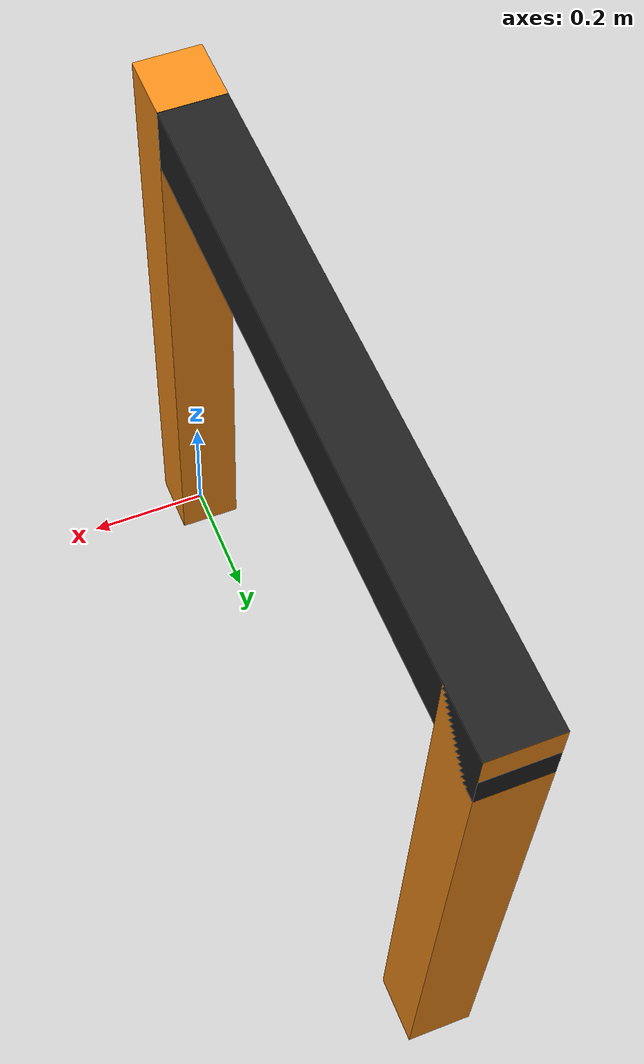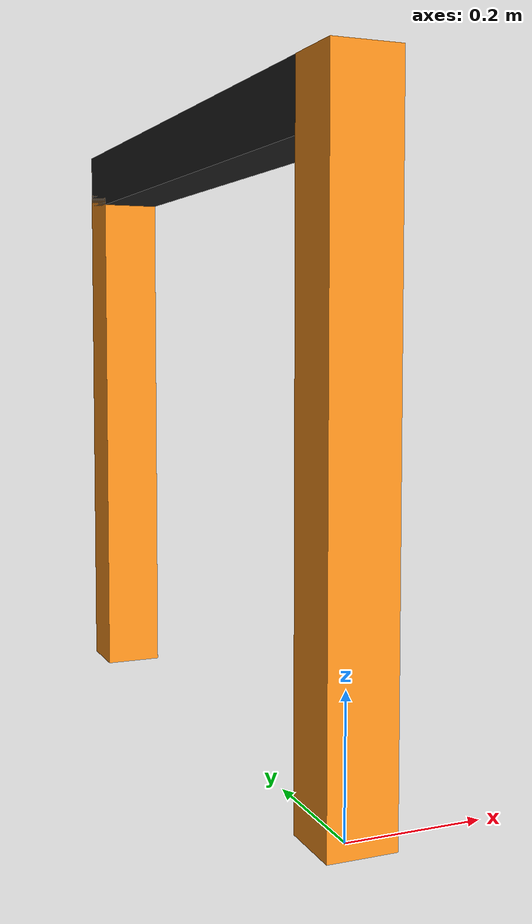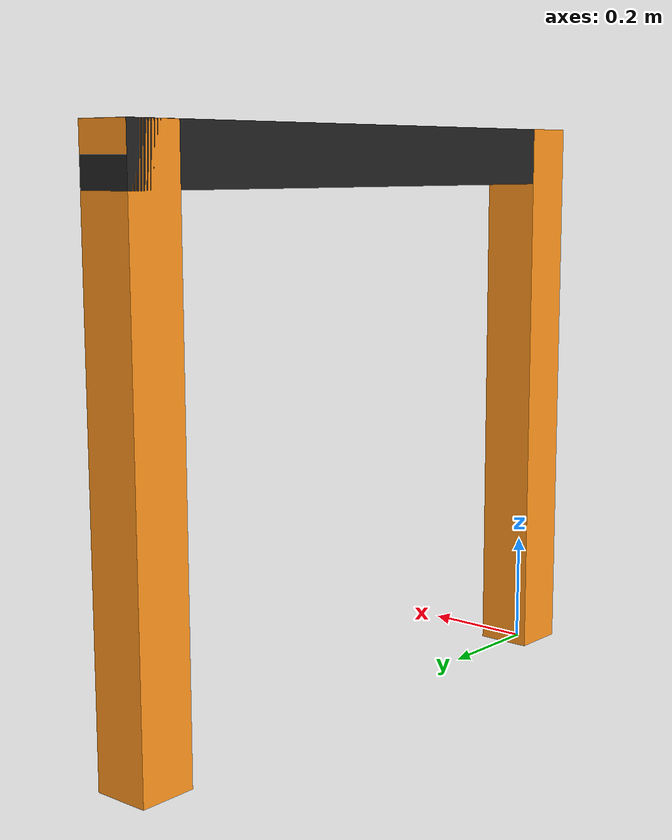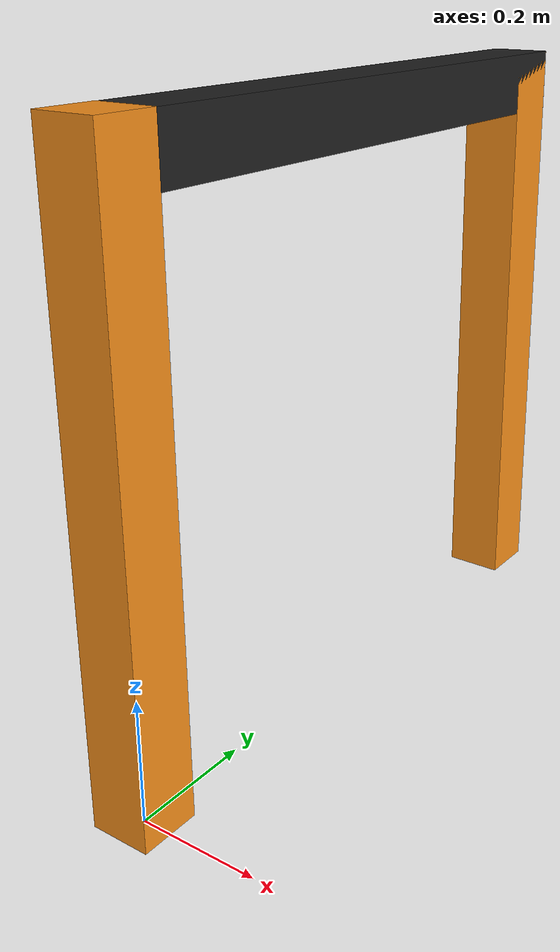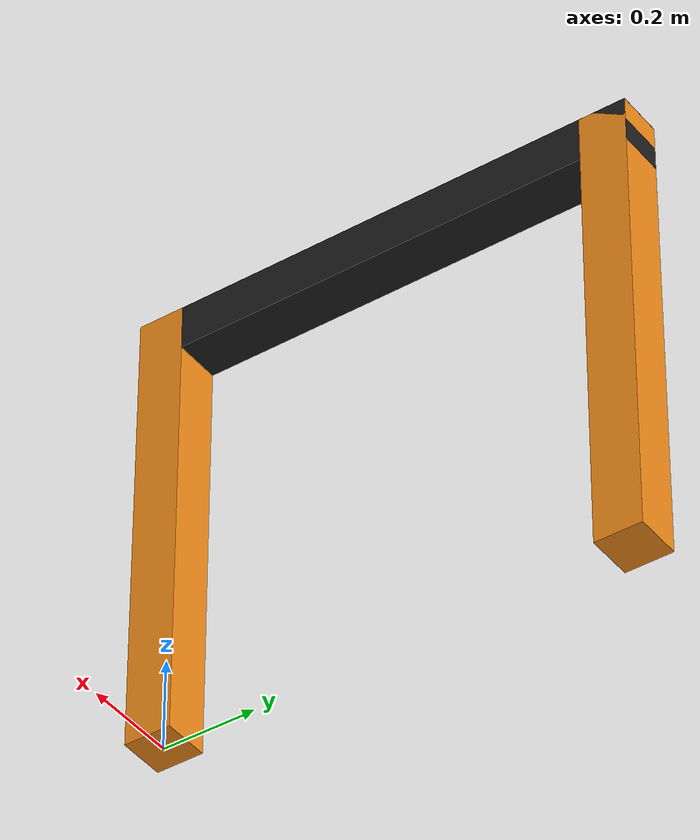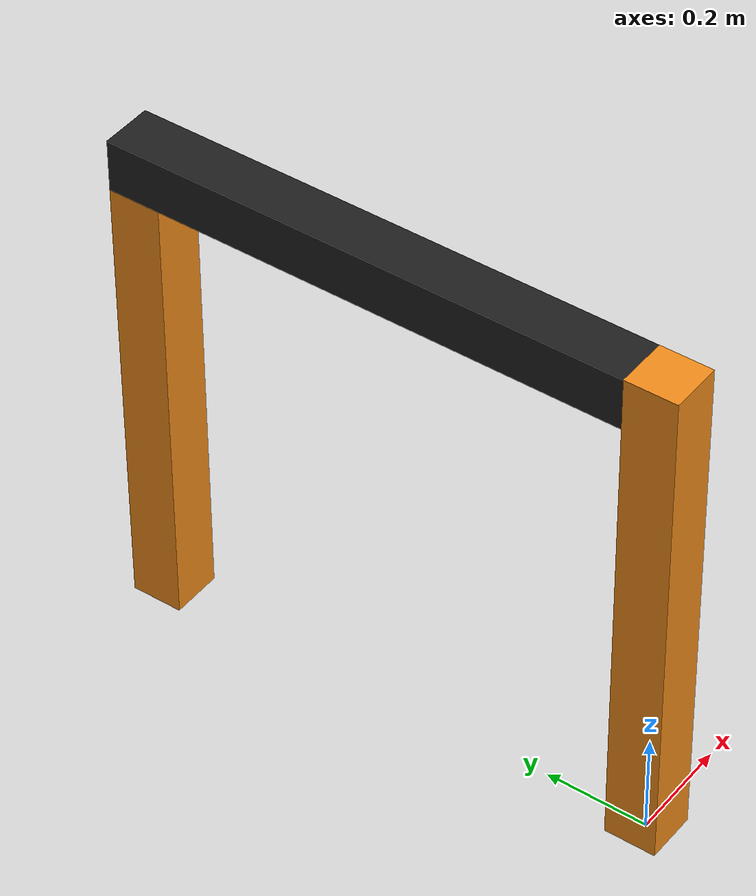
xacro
<?xml version="1.0"?>
<!-- Revolute-Revolute Manipulator -->
<robot name="one_leg" xmlns:xacro="http://www.ros.org/wiki/xacro">

  <!-- Constants for robot dimensions -->
  <xacro:property name="PI" value="3.1415926535897931"/>
  <xacro:property name="mass" value="1" /> <!-- arbitrary value for mass -->
  <xacro:property name="width" value="0.1" /> <!-- Square dimensions (widthxwidth) of beams -->
  <xacro:property name="height1" value="1" /> <!-- Link 1 -->
  <xacro:property name="height2" value="1" /> <!-- Link 2 -->
  <xacro:property name="height3" value="1" /> <!-- Link 3 -->
  <xacro:property name="axel_offset" value="0.05" /> <!-- Space btw top of beam and the each joint -->

  <!-- Import all Gazebo-customization elements, including Gazebo colors -->
  <xacro:include filename="$(find creepy_crawler)/models/one_leg/one_leg.gazebo" />
  <!-- Import Rviz colors -->
  <xacro:include filename="$(find creepy_crawler)/models/one_leg/materials.xacro" />

   <!-- Used for fixing robot to Gazebo 'base_link' -->
  <link name="world"/>

  <joint name="fixed" type="fixed">
    <parent link="world"/>
    <child link="link1"/>
  </joint>

  <!-- Base Link -->
  <link name="link1">
    <collision>
      <origin xyz="0 0 ${height1/2}" rpy="0 0 0"/>
      <geometry>
	<box size="${width} ${width} ${height1}"/>
      </geometry>
    </collision>

    <visual>
      <origin xyz="0 0 ${height1/2}" rpy="0 0 0"/>
      <geometry>
	<box size="${width} ${width} ${height1}"/>
      </geometry>
      <material name="orange"/>
    </visual>

    <inertial>
      <origin xyz="0 0 ${height1/2}" rpy="0 0 0"/>
      <mass value="${mass}"/>
      <inertia
	  ixx="${mass / 12.0 * (width*width + height1*height1)}" ixy="0.0" ixz="0.0"
	  iyy="${mass / 12.0 * (height1*height1 + width*width)}" iyz="0.0"
	  izz="${mass / 12.0 * (width*width + width*width)}"/>
    </inertial>
  </link>

  <joint name="joint1" type="continuous">
    <parent link="link1"/>
    <child link="link2"/>
    <origin xyz="0 ${width} ${height1 - axel_offset}" rpy="0 0 0"/>
    <axis xyz="0 0 1"/>
    <dynamics damping="0.7"/>
  </joint>

  <!-- Middle Link -->
  <link name="link2">
    <collision>
      <origin xyz="0 ${height2/2 - axel_offset} 0" rpy="-1.57 0 0"/>
      <geometry>
	<box size="${width} ${width} ${height2}"/>
      </geometry>
    </collision>

    <visual>
      <origin xyz="0 ${height2/2 - axel_offset} 0" rpy="-1.57 0 0"/>
      <geometry>
	<box size="${width} ${width} ${height2}"/>
      </geometry>
      <material name="black"/>
    </visual>

    <inertial>
      <origin xyz="0 ${height2/2 - axel_offset} 0" rpy="-1.57 0 0"/>
      <mass value="${mass}"/>
      <inertia
	  ixx="${mass / 12.0 * (width*width + height2*height2)}" ixy="0.0" ixz="0.0"
	  iyy="${mass / 12.0 * (height2*height2 + width*width)}" iyz="0.0"
	  izz="${mass / 12.0 * (width*width + width*width)}"/>
    </inertial>
  </link>

  <joint name="joint2" type="continuous">
    <parent link="link2"/>
    <child link="link3"/>
    <origin xyz="0 ${height2 - axel_offset*2} 0" rpy="0 0 0"/>
    <axis xyz="0 1 0"/>
    <dynamics damping="0.7"/>
  </joint>

  <!-- Top Link -->
  <link name="link3">
    <collision>
      <origin xyz="0 0 -${height3/2 - axel_offset}" rpy="0 0 0"/>
      <geometry>
	<box size="${width} ${width} ${height3}"/>
      </geometry>
    </collision>

    <visual>
      <origin xyz="0 0 -${height3/2 - axel_offset}" rpy="0 0 0"/>
      <geometry>
	<box size="${width} ${width} ${height3}"/>
      </geometry>
      <material name="orange"/>
    </visual>

    <inertial>
      <origin xyz="0 0 -${height3/2 - axel_offset}" rpy="0 0 0"/>
      <mass value="${mass}"/>
      <inertia
	  ixx="${mass / 12.0 * (width*width + height3*height3)}" ixy="0.0" ixz="0.0"
	  iyy="${mass / 12.0 * (height3*height3 + width*width)}" iyz="0.0"
	  izz="${mass / 12.0 * (width*width + width*width)}"/>
    </inertial>
  </link>

  <transmission name="tran1">
    <type>transmission_interface/SimpleTransmission</type>
    <joint name="joint1">
      <hardwareInterface>hardware_interface/EffortJointInterface</hardwareInterface>
    </joint>
    <actuator name="motor1">
      <hardwareInterface>hardware_interface/EffortJointInterface</hardwareInterface>
      <mechanicalReduction>1</mechanicalReduction>
    </actuator>
  </transmission>

  <transmission name="tran2">
    <type>transmission_interface/SimpleTransmission</type>
    <joint name="joint2">
      <hardwareInterface>hardware_interface/EffortJointInterface</hardwareInterface>
    </joint>
    <actuator name="motor2">
      <hardwareInterface>hardware_interface/EffortJointInterface</hardwareInterface>
      <mechanicalReduction>1</mechanicalReduction>
    </actuator>
  </transmission>

</robot>
